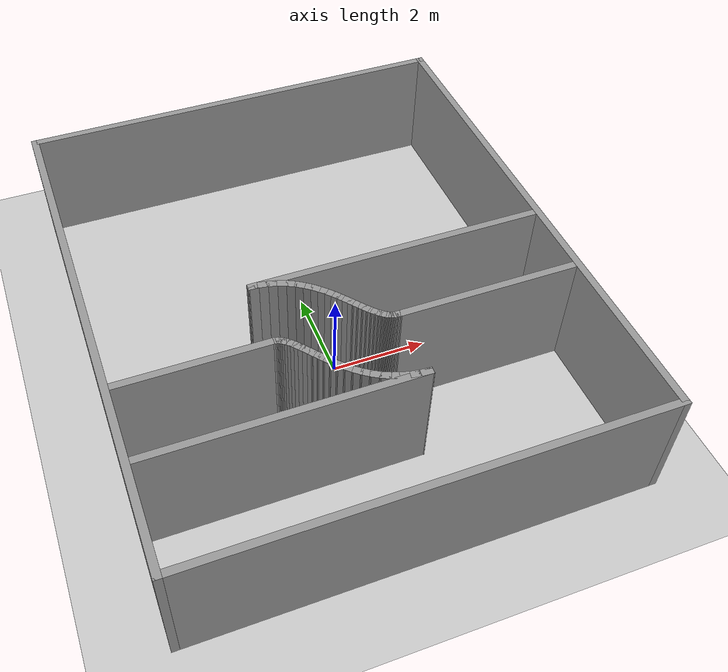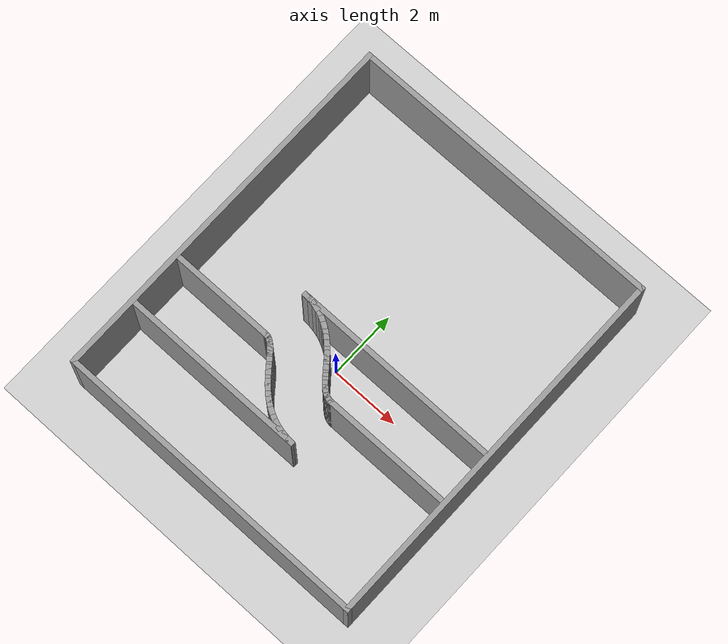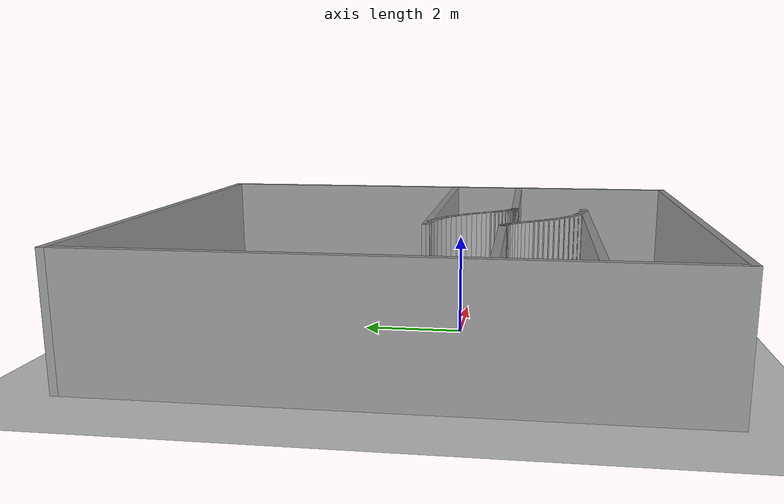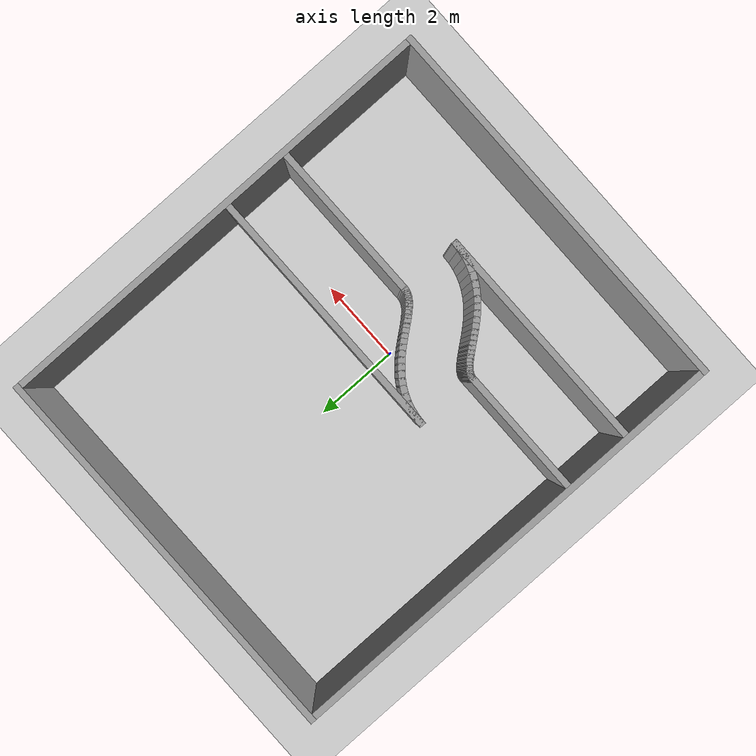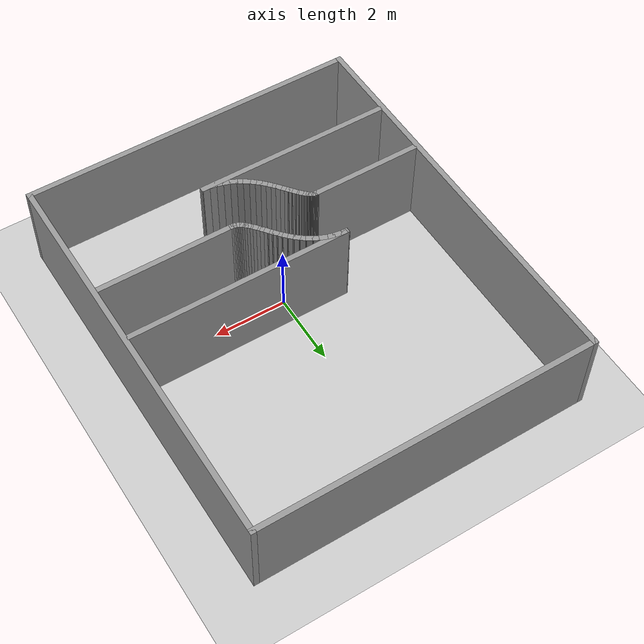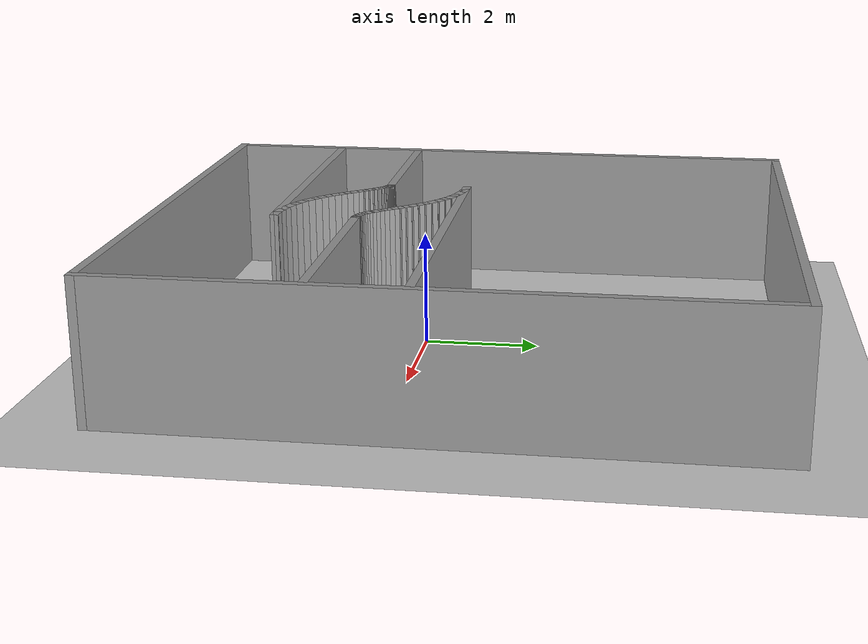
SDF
<sdf version="1.7">
 <world name="default">
  <model name="ground_plane">
   <static>1</static>
   <link name="link">
    <collision name="collision">
     <geometry><plane><normal>0 0 1</normal><size>100 100</size></plane></geometry>
     <surface>
      <contact><collide_bitmask>65535</collide_bitmask></contact>
      <friction><ode><mu>100</mu><mu2>50</mu2></ode></friction>
     </surface>
    </collision>
    <visual name="visual">
     <cast_shadows>0</cast_shadows>
     <geometry><plane><normal>0 0 1</normal><size>100 100</size></plane></geometry>
     <material>
      <script><uri>file://media/materials/scripts/gazebo.material</uri><name>Gazebo/Grey</name></script>
     </material>
    </visual>
   </link>
  </model>
  <model name="map_s_trap_outer">
   <link name="Wall_bottom">
    <collision name="Wall_bottom_Collision">
     <geometry><box><size>9.35 0.15 2.5</size></box></geometry>
     <pose>0 0 1.25 0 -0 0</pose>
    </collision>
    <visual name="Wall_bottom_Visual">
     <pose>0 0 1.25 0 -0 0</pose>
     <geometry><box><size>9.35 0.15 2.5</size></box></geometry>
     <material>
      <script><uri>file://media/materials/scripts/gazebo.material</uri><name>Gazebo/Grey</name></script>
      <ambient>1 1 1 1</ambient>
     </material>
    </visual>
    <pose>0.000000 -4.600000 0 0 -0 0.000000</pose>
   </link>
   <link name="Wall_top">
    <collision name="Wall_top_Collision">
     <geometry><box><size>9.35 0.15 2.5</size></box></geometry>
     <pose>0 0 1.25 0 -0 0</pose>
    </collision>
    <visual name="Wall_top_Visual">
     <pose>0 0 1.25 0 -0 0</pose>
     <geometry><box><size>9.35 0.15 2.5</size></box></geometry>
     <material>
      <script><uri>file://media/materials/scripts/gazebo.material</uri><name>Gazebo/Grey</name></script>
      <ambient>1 1 1 1</ambient>
     </material>
    </visual>
    <pose>0.000000 6.313750 0 0 -0 0.000000</pose>
   </link>
   <link name="Wall_left">
    <collision name="Wall_left_Collision">
     <geometry><box><size>11.0638 0.15 2.5</size></box></geometry>
     <pose>0 0 1.25 0 -0 0</pose>
    </collision>
    <visual name="Wall_left_Visual">
     <pose>0 0 1.25 0 -0 0</pose>
     <geometry><box><size>11.0638 0.15 2.5</size></box></geometry>
     <material>
      <script><uri>file://media/materials/scripts/gazebo.material</uri><name>Gazebo/Grey</name></script>
      <ambient>1 1 1 1</ambient>
     </material>
    </visual>
    <pose>-4.600000 0.856875 0 0 -0 1.570796</pose>
   </link>
   <link name="Wall_right">
    <collision name="Wall_right_Collision">
     <geometry><box><size>11.0638 0.15 2.5</size></box></geometry>
     <pose>0 0 1.25 0 -0 0</pose>
    </collision>
    <visual name="Wall_right_Visual">
     <pose>0 0 1.25 0 -0 0</pose>
     <geometry><box><size>11.0638 0.15 2.5</size></box></geometry>
     <material>
      <script><uri>file://media/materials/scripts/gazebo.material</uri><name>Gazebo/Grey</name></script>
      <ambient>1 1 1 1</ambient>
     </material>
    </visual>
    <pose>4.600000 0.856875 0 0 -0 1.570796</pose>
   </link>
   <static>1</static>
  </model>
  <model name="map_s_trap_s_walls">
   <link name="Left_hook_upper_arm">
    <collision name="Left_hook_upper_arm_Collision">
     <geometry><box><size>3.015 0.15 2.5</size></box></geometry>
     <pose>0 0 1.25 0 -0 0</pose>
    </collision>
    <visual name="Left_hook_upper_arm_Visual">
     <pose>0 0 1.25 0 -0 0</pose>
     <geometry><box><size>3.015 0.15 2.5</size></box></geometry>
     <material>
      <script><uri>file://media/materials/scripts/gazebo.material</uri><name>Gazebo/Grey</name></script>
      <ambient>1 1 1 1</ambient>
     </material>
    </visual>
    <pose>-3.037500 -0.890000 0 0 -0 0.000000</pose>
   </link>
   <link name="S_lower_curve_00">
    <collision name="S_lower_curve_00_Collision">
     <geometry><box><size>0.0787315 0.15 2.5</size></box></geometry>
     <pose>0 0 1.25 0 -0 0</pose>
    </collision>
    <visual name="S_lower_curve_00_Visual">
     <pose>0 0 1.25 0 -0 0</pose>
     <geometry><box><size>0.0787315 0.15 2.5</size></box></geometry>
     <material>
      <script><uri>file://media/materials/scripts/gazebo.material</uri><name>Gazebo/Grey</name></script>
      <ambient>1 1 1 1</ambient>
     </material>
    </visual>
    <pose>-1.530659 -0.890978 0 0 -0 -0.050548</pose>
   </link>
   <link name="S_lower_curve_01">
    <collision name="S_lower_curve_01_Collision">
     <geometry><box><size>0.0707971 0.15 2.5</size></box></geometry>
     <pose>0 0 1.25 0 -0 0</pose>
    </collision>
    <visual name="S_lower_curve_01_Visual">
     <pose>0 0 1.25 0 -0 0</pose>
     <geometry><box><size>0.0707971 0.15 2.5</size></box></geometry>
     <material>
      <script><uri>file://media/materials/scripts/gazebo.material</uri><name>Gazebo/Grey</name></script>
      <ambient>1 1 1 1</ambient>
     </material>
    </visual>
    <pose>-1.496115 -0.894400 0 0 -0 -0.159353</pose>
   </link>
   <link name="S_lower_curve_02">
    <collision name="S_lower_curve_02_Collision">
     <geometry><box><size>0.0671946 0.15 2.5</size></box></geometry>
     <pose>0 0 1.25 0 -0 0</pose>
    </collision>
    <visual name="S_lower_curve_02_Visual">
     <pose>0 0 1.25 0 -0 0</pose>
     <geometry><box><size>0.0671946 0.15 2.5</size></box></geometry>
     <material>
      <script><uri>file://media/materials/scripts/gazebo.material</uri><name>Gazebo/Grey</name></script>
      <ambient>1 1 1 1</ambient>
     </material>
    </visual>
    <pose>-1.467806 -0.900470 0 0 -0 -0.269966</pose>
   </link>
   <link name="S_lower_curve_03">
    <collision name="S_lower_curve_03_Collision">
     <geometry><box><size>0.0678011 0.15 2.5</size></box></geometry>
     <pose>0 0 1.25 0 -0 0</pose>
    </collision>
    <visual name="S_lower_curve_03_Visual">
     <pose>0 0 1.25 0 -0 0</pose>
     <geometry><box><size>0.0678011 0.15 2.5</size></box></geometry>
     <material>
      <script><uri>file://media/materials/scripts/gazebo.material</uri><name>Gazebo/Grey</name></script>
      <ambient>1 1 1 1</ambient>
     </material>
    </visual>
    <pose>-1.441782 -0.909227 0 0 -0 -0.377988</pose>
   </link>
   <link name="S_lower_curve_04">
    <collision name="S_lower_curve_04_Collision">
     <geometry><box><size>0.0720038 0.15 2.5</size></box></geometry>
     <pose>0 0 1.25 0 -0 0</pose>
    </collision>
    <visual name="S_lower_curve_04_Visual">
     <pose>0 0 1.25 0 -0 0</pose>
     <geometry><box><size>0.0720038 0.15 2.5</size></box></geometry>
     <material>
      <script><uri>file://media/materials/scripts/gazebo.material</uri><name>Gazebo/Grey</name></script>
      <ambient>1 1 1 1</ambient>
     </material>
    </visual>
    <pose>-1.414664 -0.921735 0 0 -0 -0.479228</pose>
   </link>
   <link name="S_lower_curve_05">
    <collision name="S_lower_curve_05_Collision">
     <geometry><box><size>0.078875 0.15 2.5</size></box></geometry>
     <pose>0 0 1.25 0 -0 0</pose>
    </collision>
    <visual name="S_lower_curve_05_Visual">
     <pose>0 0 1.25 0 -0 0</pose>
     <geometry><box><size>0.078875 0.15 2.5</size></box></geometry>
     <material>
      <script><uri>file://media/materials/scripts/gazebo.material</uri><name>Gazebo/Grey</name></script>
      <ambient>1 1 1 1</ambient>
     </material>
    </visual>
    <pose>-1.384110 -0.939618 0 0 -0 -0.570931</pose>
   </link>
   <link name="S_lower_curve_06">
    <collision name="S_lower_curve_06_Collision">
     <geometry><box><size>0.0874197 0.15 2.5</size></box></geometry>
     <pose>0 0 1.25 0 -0 0</pose>
    </collision>
    <visual name="S_lower_curve_06_Visual">
     <pose>0 0 1.25 0 -0 0</pose>
     <geometry><box><size>0.0874197 0.15 2.5</size></box></geometry>
     <material>
      <script><uri>file://media/materials/scripts/gazebo.material</uri><name>Gazebo/Grey</name></script>
      <ambient>1 1 1 1</ambient>
     </material>
    </visual>
    <pose>-1.348904 -0.964502 0 0 -0 -0.651651</pose>
   </link>
   <link name="S_lower_curve_07">
    <collision name="S_lower_curve_07_Collision">
     <geometry><box><size>0.0967732 0.15 2.5</size></box></geometry>
     <pose>0 0 1.25 0 -0 0</pose>
    </collision>
    <visual name="S_lower_curve_07_Visual">
     <pose>0 0 1.25 0 -0 0</pose>
     <geometry><box><size>0.0967732 0.15 2.5</size></box></geometry>
     <material>
      <script><uri>file://media/materials/scripts/gazebo.material</uri><name>Gazebo/Grey</name></script>
      <ambient>1 1 1 1</ambient>
     </material>
    </visual>
    <pose>-1.308726 -0.997617 0 0 -0 -0.720787</pose>
   </link>
   <link name="S_lower_curve_08">
    <collision name="S_lower_curve_08_Collision">
     <geometry><box><size>0.106293 0.15 2.5</size></box></geometry>
     <pose>0 0 1.25 0 -0 0</pose>
    </collision>
    <visual name="S_lower_curve_08_Visual">
     <pose>0 0 1.25 0 -0 0</pose>
     <geometry><box><size>0.106293 0.15 2.5</size></box></geometry>
     <material>
      <script><uri>file://media/materials/scripts/gazebo.material</uri><name>Gazebo/Grey</name></script>
      <ambient>1 1 1 1</ambient>
     </material>
    </visual>
    <pose>-1.263796 -1.039622 0 0 -0 -0.778314</pose>
   </link>
   <link name="S_lower_curve_09">
    <collision name="S_lower_curve_09_Collision">
     <geometry><box><size>0.115562 0.15 2.5</size></box></geometry>
     <pose>0 0 1.25 0 -0 0</pose>
    </collision>
    <visual name="S_lower_curve_09_Visual">
     <pose>0 0 1.25 0 -0 0</pose>
     <geometry><box><size>0.115562 0.15 2.5</size></box></geometry>
     <material>
      <script><uri>file://media/materials/scripts/gazebo.material</uri><name>Gazebo/Grey</name></script>
      <ambient>1 1 1 1</ambient>
     </material>
    </visual>
    <pose>-1.214544 -1.090635 0 0 -0 -0.824582</pose>
   </link>
   <link name="S_lower_curve_10">
    <collision name="S_lower_curve_10_Collision">
     <geometry><box><size>0.124351 0.15 2.5</size></box></geometry>
     <pose>0 0 1.25 0 -0 0</pose>
    </collision>
    <visual name="S_lower_curve_10_Visual">
     <pose>0 0 1.25 0 -0 0</pose>
     <geometry><box><size>0.124351 0.15 2.5</size></box></geometry>
     <material>
      <script><uri>file://media/materials/scripts/gazebo.material</uri><name>Gazebo/Grey</name></script>
      <ambient>1 1 1 1</ambient>
     </material>
    </visual>
    <pose>-1.161383 -1.150342 0 0 -0 -0.860117</pose>
   </link>
   <link name="S_lower_curve_11">
    <collision name="S_lower_curve_11_Collision">
     <geometry><box><size>0.132566 0.15 2.5</size></box></geometry>
     <pose>0 0 1.25 0 -0 0</pose>
    </collision>
    <visual name="S_lower_curve_11_Visual">
     <pose>0 0 1.25 0 -0 0</pose>
     <geometry><box><size>0.132566 0.15 2.5</size></box></geometry>
     <material>
      <script><uri>file://media/materials/scripts/gazebo.material</uri><name>Gazebo/Grey</name></script>
      <ambient>1 1 1 1</ambient>
     </material>
    </visual>
    <pose>-1.104576 -1.218141 0 0 -0 -0.885475</pose>
   </link>
   <link name="S_lower_curve_12">
    <collision name="S_lower_curve_12_Collision">
     <geometry><box><size>0.140205 0.15 2.5</size></box></geometry>
     <pose>0 0 1.25 0 -0 0</pose>
    </collision>
    <visual name="S_lower_curve_12_Visual">
     <pose>0 0 1.25 0 -0 0</pose>
     <geometry><box><size>0.140205 0.15 2.5</size></box></geometry>
     <material>
      <script><uri>file://media/materials/scripts/gazebo.material</uri><name>Gazebo/Grey</name></script>
      <ambient>1 1 1 1</ambient>
     </material>
    </visual>
    <pose>-1.044183 -1.293257 0 0 -0 -0.901142</pose>
   </link>
   <link name="S_lower_curve_13">
    <collision name="S_lower_curve_13_Collision">
     <geometry><box><size>0.147327 0.15 2.5</size></box></geometry>
     <pose>0 0 1.25 0 -0 0</pose>
    </collision>
    <visual name="S_lower_curve_13_Visual">
     <pose>0 0 1.25 0 -0 0</pose>
     <geometry><box><size>0.147327 0.15 2.5</size></box></geometry>
     <material>
      <script><uri>file://media/materials/scripts/gazebo.material</uri><name>Gazebo/Grey</name></script>
      <ambient>1 1 1 1</ambient>
     </material>
    </visual>
    <pose>-0.980040 -1.374823 0 0 -0 -0.907470</pose>
   </link>
   <link name="S_lower_curve_14">
    <collision name="S_lower_curve_14_Collision">
     <geometry><box><size>0.154032 0.15 2.5</size></box></geometry>
     <pose>0 0 1.25 0 -0 0</pose>
    </collision>
    <visual name="S_lower_curve_14_Visual">
     <pose>0 0 1.25 0 -0 0</pose>
     <geometry><box><size>0.154032 0.15 2.5</size></box></geometry>
     <material>
      <script><uri>file://media/materials/scripts/gazebo.material</uri><name>Gazebo/Grey</name></script>
      <ambient>1 1 1 1</ambient>
     </material>
    </visual>
    <pose>-0.911764 -1.461934 0 0 -0 -0.904656</pose>
   </link>
   <link name="S_lower_curve_15">
    <collision name="S_lower_curve_15_Collision">
     <geometry><box><size>0.160445 0.15 2.5</size></box></geometry>
     <pose>0 0 1.25 0 -0 0</pose>
    </collision>
    <visual name="S_lower_curve_15_Visual">
     <pose>0 0 1.25 0 -0 0</pose>
     <geometry><box><size>0.160445 0.15 2.5</size></box></geometry>
     <material>
      <script><uri>file://media/materials/scripts/gazebo.material</uri><name>Gazebo/Grey</name></script>
      <ambient>1 1 1 1</ambient>
     </material>
    </visual>
    <pose>-0.838754 -1.553661 0 0 -0 -0.892729</pose>
   </link>
   <link name="S_lower_curve_16">
    <collision name="S_lower_curve_16_Collision">
     <geometry><box><size>0.166706 0.15 2.5</size></box></geometry>
     <pose>0 0 1.25 0 -0 0</pose>
    </collision>
    <visual name="S_lower_curve_16_Visual">
     <pose>0 0 1.25 0 -0 0</pose>
     <geometry><box><size>0.166706 0.15 2.5</size></box></geometry>
     <material>
      <script><uri>file://media/materials/scripts/gazebo.material</uri><name>Gazebo/Grey</name></script>
      <ambient>1 1 1 1</ambient>
     </material>
    </visual>
    <pose>-0.760201 -1.649048 0 0 -0 -0.871561</pose>
   </link>
   <link name="S_lower_curve_17">
    <collision name="S_lower_curve_17_Collision">
     <geometry><box><size>0.172959 0.15 2.5</size></box></geometry>
     <pose>0 0 1.25 0 -0 0</pose>
    </collision>
    <visual name="S_lower_curve_17_Visual">
     <pose>0 0 1.25 0 -0 0</pose>
     <geometry><box><size>0.172959 0.15 2.5</size></box></geometry>
     <material>
      <script><uri>file://media/materials/scripts/gazebo.material</uri><name>Gazebo/Grey</name></script>
      <ambient>1 1 1 1</ambient>
     </material>
    </visual>
    <pose>-0.675096 -1.747077 0 0 -0 -0.840895</pose>
   </link>
   <link name="S_lower_curve_18">
    <collision name="S_lower_curve_18_Collision">
     <geometry><box><size>0.17933 0.15 2.5</size></box></geometry>
     <pose>0 0 1.25 0 -0 0</pose>
    </collision>
    <visual name="S_lower_curve_18_Visual">
     <pose>0 0 1.25 0 -0 0</pose>
     <geometry><box><size>0.17933 0.15 2.5</size></box></geometry>
     <material>
      <script><uri>file://media/materials/scripts/gazebo.material</uri><name>Gazebo/Grey</name></script>
      <ambient>1 1 1 1</ambient>
     </material>
    </visual>
    <pose>-0.582252 -1.846614 0 0 -0 -0.800394</pose>
   </link>
   <link name="S_lower_curve_19">
    <collision name="S_lower_curve_19_Collision">
     <geometry><box><size>0.185913 0.15 2.5</size></box></geometry>
     <pose>0 0 1.25 0 -0 0</pose>
    </collision>
    <visual name="S_lower_curve_19_Visual">
     <pose>0 0 1.25 0 -0 0</pose>
     <geometry><box><size>0.185913 0.15 2.5</size></box></geometry>
     <material>
      <script><uri>file://media/materials/scripts/gazebo.material</uri><name>Gazebo/Grey</name></script>
      <ambient>1 1 1 1</ambient>
     </material>
    </visual>
    <pose>-0.480340 -1.946323 0 0 -0 -0.749720</pose>
   </link>
   <link name="S_lower_curve_20">
    <collision name="S_lower_curve_20_Collision">
     <geometry><box><size>0.19273 0.15 2.5</size></box></geometry>
     <pose>0 0 1.25 0 -0 0</pose>
    </collision>
    <visual name="S_lower_curve_20_Visual">
     <pose>0 0 1.25 0 -0 0</pose>
     <geometry><box><size>0.19273 0.15 2.5</size></box></geometry>
     <material>
      <script><uri>file://media/materials/scripts/gazebo.material</uri><name>Gazebo/Grey</name></script>
      <ambient>1 1 1 1</ambient>
     </material>
    </visual>
    <pose>-0.367983 -2.044568 0 0 -0 -0.688655</pose>
   </link>
   <link name="S_lower_curve_21">
    <collision name="S_lower_curve_21_Collision">
     <geometry><box><size>0.199713 0.15 2.5</size></box></geometry>
     <pose>0 0 1.25 0 -0 0</pose>
    </collision>
    <visual name="S_lower_curve_21_Visual">
     <pose>0 0 1.25 0 -0 0</pose>
     <geometry><box><size>0.199713 0.15 2.5</size></box></geometry>
     <material>
      <script><uri>file://media/materials/scripts/gazebo.material</uri><name>Gazebo/Grey</name></script>
      <ambient>1 1 1 1</ambient>
     </material>
    </visual>
    <pose>-0.243901 -2.139319 0 0 -0 -0.617265</pose>
   </link>
   <link name="S_lower_curve_22">
    <collision name="S_lower_curve_22_Collision">
     <geometry><box><size>0.206682 0.15 2.5</size></box></geometry>
     <pose>0 0 1.25 0 -0 0</pose>
    </collision>
    <visual name="S_lower_curve_22_Visual">
     <pose>0 0 1.25 0 -0 0</pose>
     <geometry><box><size>0.206682 0.15 2.5</size></box></geometry>
     <material>
      <script><uri>file://media/materials/scripts/gazebo.material</uri><name>Gazebo/Grey</name></script>
      <ambient>1 1 1 1</ambient>
     </material>
    </visual>
    <pose>-0.107132 -2.228110 0 0 -0 -0.536091</pose>
   </link>
   <link name="S_lower_curve_23">
    <collision name="S_lower_curve_23_Collision">
     <geometry><box><size>0.213371 0.15 2.5</size></box></geometry>
     <pose>0 0 1.25 0 -0 0</pose>
    </collision>
    <visual name="S_lower_curve_23_Visual">
     <pose>0 0 1.25 0 -0 0</pose>
     <geometry><box><size>0.213371 0.15 2.5</size></box></geometry>
     <material>
      <script><uri>file://media/materials/scripts/gazebo.material</uri><name>Gazebo/Grey</name></script>
      <ambient>1 1 1 1</ambient>
     </material>
    </visual>
    <pose>0.042711 -2.308097 0 0 -0 -0.446326</pose>
   </link>
   <link name="S_lower_curve_24">
    <collision name="S_lower_curve_24_Collision">
     <geometry><box><size>0.219503 0.15 2.5</size></box></geometry>
     <pose>0 0 1.25 0 -0 0</pose>
    </collision>
    <visual name="S_lower_curve_24_Visual">
     <pose>0 0 1.25 0 -0 0</pose>
     <geometry><box><size>0.219503 0.15 2.5</size></box></geometry>
     <material>
      <script><uri>file://media/materials/scripts/gazebo.material</uri><name>Gazebo/Grey</name></script>
      <ambient>1 1 1 1</ambient>
     </material>
    </visual>
    <pose>0.205217 -2.376282 0 0 -0 -0.349904</pose>
   </link>
   <link name="S_lower_curve_25">
    <collision name="S_lower_curve_25_Collision">
     <geometry><box><size>0.224906 0.15 2.5</size></box></geometry>
     <pose>0 0 1.25 0 -0 0</pose>
    </collision>
    <visual name="S_lower_curve_25_Visual">
     <pose>0 0 1.25 0 -0 0</pose>
     <geometry><box><size>0.224906 0.15 2.5</size></box></geometry>
     <material>
      <script><uri>file://media/materials/scripts/gazebo.material</uri><name>Gazebo/Grey</name></script>
      <ambient>1 1 1 1</ambient>
     </material>
    </visual>
    <pose>0.379122 -2.429872 0 0 -0 -0.249427</pose>
   </link>
   <link name="S_lower_curve_26">
    <collision name="S_lower_curve_26_Collision">
     <geometry><box><size>0.229624 0.15 2.5</size></box></geometry>
     <pose>0 0 1.25 0 -0 0</pose>
    </collision>
    <visual name="S_lower_curve_26_Visual">
     <pose>0 0 1.25 0 -0 0</pose>
     <geometry><box><size>0.229624 0.15 2.5</size></box></geometry>
     <material>
      <script><uri>file://media/materials/scripts/gazebo.material</uri><name>Gazebo/Grey</name></script>
      <ambient>1 1 1 1</ambient>
     </material>
    </visual>
    <pose>0.562491 -2.466665 0 0 -0 -0.147894</pose>
   </link>
   <link name="S_lower_curve_27">
    <collision name="S_lower_curve_27_Collision">
     <geometry><box><size>0.233958 0.15 2.5</size></box></geometry>
     <pose>0 0 1.25 0 -0 0</pose>
    </collision>
    <visual name="S_lower_curve_27_Visual">
     <pose>0 0 1.25 0 -0 0</pose>
     <geometry><box><size>0.233958 0.15 2.5</size></box></geometry>
     <material>
      <script><uri>file://media/materials/scripts/gazebo.material</uri><name>Gazebo/Grey</name></script>
      <ambient>1 1 1 1</ambient>
     </material>
    </visual>
    <pose>0.753134 -2.485318 0 0 -0 -0.048299</pose>
   </link>
   <link name="Left_hook_lower_arm">
    <collision name="Left_hook_lower_arm_Collision">
     <geometry><box><size>5.415 0.15 2.5</size></box></geometry>
     <pose>0 0 1.25 0 -0 0</pose>
    </collision>
    <visual name="Left_hook_lower_arm_Visual">
     <pose>0 0 1.25 0 -0 0</pose>
     <geometry><box><size>5.415 0.15 2.5</size></box></geometry>
     <material>
      <script><uri>file://media/materials/scripts/gazebo.material</uri><name>Gazebo/Grey</name></script>
      <ambient>1 1 1 1</ambient>
     </material>
    </visual>
    <pose>-1.837500 -2.490000 0 0 -0 0.000000</pose>
   </link>
   <link name="Right_hook_upper_arm">
    <collision name="Right_hook_upper_arm_Collision">
     <geometry><box><size>6.115 0.15 2.5</size></box></geometry>
     <pose>0 0 1.25 0 -0 0</pose>
    </collision>
    <visual name="Right_hook_upper_arm_Visual">
     <pose>0 0 1.25 0 -0 0</pose>
     <geometry><box><size>6.115 0.15 2.5</size></box></geometry>
     <material>
      <script><uri>file://media/materials/scripts/gazebo.material</uri><name>Gazebo/Grey</name></script>
      <ambient>1 1 1 1</ambient>
     </material>
    </visual>
    <pose>1.487500 0.530000 0 0 -0 0.000000</pose>
   </link>
   <link name="S_upper_curve_00">
    <collision name="S_upper_curve_00_Collision">
     <geometry><box><size>0.229834 0.15 2.5</size></box></geometry>
     <pose>0 0 1.25 0 -0 0</pose>
    </collision>
    <visual name="S_upper_curve_00_Visual">
     <pose>0 0 1.25 0 -0 0</pose>
     <geometry><box><size>0.229834 0.15 2.5</size></box></geometry>
     <material>
      <script><uri>file://media/materials/scripts/gazebo.material</uri><name>Gazebo/Grey</name></script>
      <ambient>1 1 1 1</ambient>
     </material>
    </visual>
    <pose>-1.455215 0.525002 0 0 -0 -0.052683</pose>
   </link>
   <link name="S_upper_curve_01">
    <collision name="S_upper_curve_01_Collision">
     <geometry><box><size>0.22609 0.15 2.5</size></box></geometry>
     <pose>0 0 1.25 0 -0 0</pose>
    </collision>
    <visual name="S_upper_curve_01_Visual">
     <pose>0 0 1.25 0 -0 0</pose>
     <geometry><box><size>0.22609 0.15 2.5</size></box></geometry>
     <material>
      <script><uri>file://media/materials/scripts/gazebo.material</uri><name>Gazebo/Grey</name></script>
      <ambient>1 1 1 1</ambient>
     </material>
    </visual>
    <pose>-1.268586 0.505100 0 0 -0 -0.160868</pose>
   </link>
   <link name="S_upper_curve_02">
    <collision name="S_upper_curve_02_Collision">
     <geometry><box><size>0.221457 0.15 2.5</size></box></geometry>
     <pose>0 0 1.25 0 -0 0</pose>
    </collision>
    <visual name="S_upper_curve_02_Visual">
     <pose>0 0 1.25 0 -0 0</pose>
     <geometry><box><size>0.221457 0.15 2.5</size></box></geometry>
     <material>
      <script><uri>file://media/materials/scripts/gazebo.material</uri><name>Gazebo/Grey</name></script>
      <ambient>1 1 1 1</ambient>
     </material>
    </visual>
    <pose>-1.089305 0.465980 0 0 -0 -0.270183</pose>
   </link>
   <link name="S_upper_curve_03">
    <collision name="S_upper_curve_03_Collision">
     <geometry><box><size>0.215716 0.15 2.5</size></box></geometry>
     <pose>0 0 1.25 0 -0 0</pose>
    </collision>
    <visual name="S_upper_curve_03_Visual">
     <pose>0 0 1.25 0 -0 0</pose>
     <geometry><box><size>0.215716 0.15 2.5</size></box></geometry>
     <material>
      <script><uri>file://media/materials/scripts/gazebo.material</uri><name>Gazebo/Grey</name></script>
      <ambient>1 1 1 1</ambient>
     </material>
    </visual>
    <pose>-0.920176 0.409431 0 0 -0 -0.376880</pose>
   </link>
   <link name="S_upper_curve_04">
    <collision name="S_upper_curve_04_Collision">
     <geometry><box><size>0.20901 0.15 2.5</size></box></geometry>
     <pose>0 0 1.25 0 -0 0</pose>
    </collision>
    <visual name="S_upper_curve_04_Visual">
     <pose>0 0 1.25 0 -0 0</pose>
     <geometry><box><size>0.20901 0.15 2.5</size></box></geometry>
     <material>
      <script><uri>file://media/materials/scripts/gazebo.material</uri><name>Gazebo/Grey</name></script>
      <ambient>1 1 1 1</ambient>
     </material>
    </visual>
    <pose>-0.763430 0.338266 0 0 -0 -0.477453</pose>
   </link>
   <link name="S_upper_curve_05">
    <collision name="S_upper_curve_05_Collision">
     <geometry><box><size>0.201725 0.15 2.5</size></box></geometry>
     <pose>0 0 1.25 0 -0 0</pose>
    </collision>
    <visual name="S_upper_curve_05_Visual">
     <pose>0 0 1.25 0 -0 0</pose>
     <geometry><box><size>0.201725 0.15 2.5</size></box></geometry>
     <material>
      <script><uri>file://media/materials/scripts/gazebo.material</uri><name>Gazebo/Grey</name></script>
      <ambient>1 1 1 1</ambient>
     </material>
    </visual>
    <pose>-0.620259 0.255857 0 0 -0 -0.569137</pose>
   </link>
   <link name="S_upper_curve_06">
    <collision name="S_upper_curve_06_Collision">
     <geometry><box><size>0.194298 0.15 2.5</size></box></geometry>
     <pose>0 0 1.25 0 -0 0</pose>
    </collision>
    <visual name="S_upper_curve_06_Visual">
     <pose>0 0 1.25 0 -0 0</pose>
     <geometry><box><size>0.194298 0.15 2.5</size></box></geometry>
     <material>
      <script><uri>file://media/materials/scripts/gazebo.material</uri><name>Gazebo/Grey</name></script>
      <ambient>1 1 1 1</ambient>
     </material>
    </visual>
    <pose>-0.490733 0.165581 0 0 -0 -0.650149</pose>
   </link>
   <link name="S_upper_curve_07">
    <collision name="S_upper_curve_07_Collision">
     <geometry><box><size>0.187066 0.15 2.5</size></box></geometry>
     <pose>0 0 1.25 0 -0 0</pose>
    </collision>
    <visual name="S_upper_curve_07_Visual">
     <pose>0 0 1.25 0 -0 0</pose>
     <geometry><box><size>0.187066 0.15 2.5</size></box></geometry>
     <material>
      <script><uri>file://media/materials/scripts/gazebo.material</uri><name>Gazebo/Grey</name></script>
      <ambient>1 1 1 1</ambient>
     </material>
    </visual>
    <pose>-0.374023 0.070415 0 0 -0 -0.719642</pose>
   </link>
   <link name="S_upper_curve_08">
    <collision name="S_upper_curve_08_Collision">
     <geometry><box><size>0.180208 0.15 2.5</size></box></geometry>
     <pose>0 0 1.25 0 -0 0</pose>
    </collision>
    <visual name="S_upper_curve_08_Visual">
     <pose>0 0 1.25 0 -0 0</pose>
     <geometry><box><size>0.180208 0.15 2.5</size></box></geometry>
     <material>
      <script><uri>file://media/materials/scripts/gazebo.material</uri><name>Gazebo/Grey</name></script>
      <ambient>1 1 1 1</ambient>
     </material>
    </visual>
    <pose>-0.268762 -0.027229 0 0 -0 -0.777490</pose>
   </link>
   <link name="S_upper_curve_09">
    <collision name="S_upper_curve_09_Collision">
     <geometry><box><size>0.173758 0.15 2.5</size></box></geometry>
     <pose>0 0 1.25 0 -0 0</pose>
    </collision>
    <visual name="S_upper_curve_09_Visual">
     <pose>0 0 1.25 0 -0 0</pose>
     <geometry><box><size>0.173758 0.15 2.5</size></box></geometry>
     <material>
      <script><uri>file://media/materials/scripts/gazebo.material</uri><name>Gazebo/Grey</name></script>
      <ambient>1 1 1 1</ambient>
     </material>
    </visual>
    <pose>-0.173370 -0.125487 0 0 -0 -0.824013</pose>
   </link>
   <link name="S_upper_curve_10">
    <collision name="S_upper_curve_10_Collision">
     <geometry><box><size>0.167641 0.15 2.5</size></box></geometry>
     <pose>0 0 1.25 0 -0 0</pose>
    </collision>
    <visual name="S_upper_curve_10_Visual">
     <pose>0 0 1.25 0 -0 0</pose>
     <geometry><box><size>0.167641 0.15 2.5</size></box></geometry>
     <material>
      <script><uri>file://media/materials/scripts/gazebo.material</uri><name>Gazebo/Grey</name></script>
      <ambient>1 1 1 1</ambient>
     </material>
    </visual>
    <pose>-0.086289 -0.222923 0 0 -0 -0.859741</pose>
   </link>
   <link name="S_upper_curve_11">
    <collision name="S_upper_curve_11_Collision">
     <geometry><box><size>0.161724 0.15 2.5</size></box></geometry>
     <pose>0 0 1.25 0 -0 0</pose>
    </collision>
    <visual name="S_upper_curve_11_Visual">
     <pose>0 0 1.25 0 -0 0</pose>
     <geometry><box><size>0.161724 0.15 2.5</size></box></geometry>
     <material>
      <script><uri>file://media/materials/scripts/gazebo.material</uri><name>Gazebo/Grey</name></script>
      <ambient>1 1 1 1</ambient>
     </material>
    </visual>
    <pose>-0.006107 -0.318390 0 0 -0 -0.885246</pose>
   </link>
   <link name="S_upper_curve_12">
    <collision name="S_upper_curve_12_Collision">
     <geometry><box><size>0.155851 0.15 2.5</size></box></geometry>
     <pose>0 0 1.25 0 -0 0</pose>
    </collision>
    <visual name="S_upper_curve_12_Visual">
     <pose>0 0 1.25 0 -0 0</pose>
     <geometry><box><size>0.155851 0.15 2.5</size></box></geometry>
     <material>
      <script><uri>file://media/materials/scripts/gazebo.material</uri><name>Gazebo/Grey</name></script>
      <ambient>1 1 1 1</ambient>
     </material>
    </visual>
    <pose>0.068385 -0.410913 0 0 -0 -0.901027</pose>
   </link>
   <link name="S_upper_curve_13">
    <collision name="S_upper_curve_13_Collision">
     <geometry><box><size>0.149867 0.15 2.5</size></box></geometry>
     <pose>0 0 1.25 0 -0 0</pose>
    </collision>
    <visual name="S_upper_curve_13_Visual">
     <pose>0 0 1.25 0 -0 0</pose>
     <geometry><box><size>0.149867 0.15 2.5</size></box></geometry>
     <material>
      <script><uri>file://media/materials/scripts/gazebo.material</uri><name>Gazebo/Grey</name></script>
      <ambient>1 1 1 1</ambient>
     </material>
    </visual>
    <pose>0.138172 -0.499608 0 0 -0 -0.907452</pose>
   </link>
   <link name="S_upper_curve_14">
    <collision name="S_upper_curve_14_Collision">
     <geometry><box><size>0.143635 0.15 2.5</size></box></geometry>
     <pose>0 0 1.25 0 -0 0</pose>
    </collision>
    <visual name="S_upper_curve_14_Visual">
     <pose>0 0 1.25 0 -0 0</pose>
     <geometry><box><size>0.143635 0.15 2.5</size></box></geometry>
     <material>
      <script><uri>file://media/materials/scripts/gazebo.material</uri><name>Gazebo/Grey</name></script>
      <ambient>1 1 1 1</ambient>
     </material>
    </visual>
    <pose>0.204015 -0.583635 0 0 -0 -0.904729</pose>
   </link>
   <link name="S_upper_curve_15">
    <collision name="S_upper_curve_15_Collision">
     <geometry><box><size>0.137044 0.15 2.5</size></box></geometry>
     <pose>0 0 1.25 0 -0 0</pose>
    </collision>
    <visual name="S_upper_curve_15_Visual">
     <pose>0 0 1.25 0 -0 0</pose>
     <geometry><box><size>0.137044 0.15 2.5</size></box></geometry>
     <material>
      <script><uri>file://media/materials/scripts/gazebo.material</uri><name>Gazebo/Grey</name></script>
      <ambient>1 1 1 1</ambient>
     </material>
    </visual>
    <pose>0.266464 -0.662170 0 0 -0 -0.892897</pose>
   </link>
   <link name="S_upper_curve_16">
    <collision name="S_upper_curve_16_Collision">
     <geometry><box><size>0.130027 0.15 2.5</size></box></geometry>
     <pose>0 0 1.25 0 -0 0</pose>
    </collision>
    <visual name="S_upper_curve_16_Visual">
     <pose>0 0 1.25 0 -0 0</pose>
     <geometry><box><size>0.130027 0.15 2.5</size></box></geometry>
     <material>
      <script><uri>file://media/materials/scripts/gazebo.material</uri><name>Gazebo/Grey</name></script>
      <ambient>1 1 1 1</ambient>
     </material>
    </visual>
    <pose>0.325858 -0.734422 0 0 -0 -0.871840</pose>
   </link>
   <link name="S_upper_curve_17">
    <collision name="S_upper_curve_17_Collision">
     <geometry><box><size>0.122567 0.15 2.5</size></box></geometry>
     <pose>0 0 1.25 0 -0 0</pose>
    </collision>
    <visual name="S_upper_curve_17_Visual">
     <pose>0 0 1.25 0 -0 0</pose>
     <geometry><box><size>0.122567 0.15 2.5</size></box></geometry>
     <material>
      <script><uri>file://media/materials/scripts/gazebo.material</uri><name>Gazebo/Grey</name></script>
      <ambient>1 1 1 1</ambient>
     </material>
    </visual>
    <pose>0.382335 -0.799658 0 0 -0 -0.841310</pose>
   </link>
   <link name="S_upper_curve_18">
    <collision name="S_upper_curve_18_Collision">
     <geometry><box><size>0.114727 0.15 2.5</size></box></geometry>
     <pose>0 0 1.25 0 -0 0</pose>
    </collision>
    <visual name="S_upper_curve_18_Visual">
     <pose>0 0 1.25 0 -0 0</pose>
     <geometry><box><size>0.114727 0.15 2.5</size></box></geometry>
     <material>
      <script><uri>file://media/materials/scripts/gazebo.material</uri><name>Gazebo/Grey</name></script>
      <ambient>1 1 1 1</ambient>
     </material>
    </visual>
    <pose>0.435855 -0.857263 0 0 -0 -0.800976</pose>
   </link>
   <link name="S_upper_curve_19">
    <collision name="S_upper_curve_19_Collision">
     <geometry><box><size>0.106669 0.15 2.5</size></box></geometry>
     <pose>0 0 1.25 0 -0 0</pose>
    </collision>
    <visual name="S_upper_curve_19_Visual">
     <pose>0 0 1.25 0 -0 0</pose>
     <geometry><box><size>0.106669 0.15 2.5</size></box></geometry>
     <material>
      <script><uri>file://media/materials/scripts/gazebo.material</uri><name>Gazebo/Grey</name></script>
      <ambient>1 1 1 1</ambient>
     </material>
    </visual>
    <pose>0.486239 -0.906826 0 0 -0 -0.750498</pose>
   </link>
   <link name="S_upper_curve_20">
    <collision name="S_upper_curve_20_Collision">
     <geometry><box><size>0.0986905 0.15 2.5</size></box></geometry>
     <pose>0 0 1.25 0 -0 0</pose>
    </collision>
    <visual name="S_upper_curve_20_Visual">
     <pose>0 0 1.25 0 -0 0</pose>
     <geometry><box><size>0.0986905 0.15 2.5</size></box></geometry>
     <material>
      <script><uri>file://media/materials/scripts/gazebo.material</uri><name>Gazebo/Grey</name></script>
      <ambient>1 1 1 1</ambient>
     </material>
    </visual>
    <pose>0.533257 -0.948231 0 0 -0 -0.689640</pose>
   </link>
   <link name="S_upper_curve_21">
    <collision name="S_upper_curve_21_Collision">
     <geometry><box><size>0.0912546 0.15 2.5</size></box></geometry>
     <pose>0 0 1.25 0 -0 0</pose>
    </collision>
    <visual name="S_upper_curve_21_Visual">
     <pose>0 0 1.25 0 -0 0</pose>
     <geometry><box><size>0.0912546 0.15 2.5</size></box></geometry>
     <material>
      <script><uri>file://media/materials/scripts/gazebo.material</uri><name>Gazebo/Grey</name></script>
      <ambient>1 1 1 1</ambient>
     </material>
    </visual>
    <pose>0.576778 -0.981759 0 0 -0 -0.618412</pose>
   </link>
   <link name="S_upper_curve_22">
    <collision name="S_upper_curve_22_Collision">
     <geometry><box><size>0.0849917 0.15 2.5</size></box></geometry>
     <pose>0 0 1.25 0 -0 0</pose>
    </collision>
    <visual name="S_upper_curve_22_Visual">
     <pose>0 0 1.25 0 -0 0</pose>
     <geometry><box><size>0.0849917 0.15 2.5</size></box></geometry>
     <material>
      <script><uri>file://media/materials/scripts/gazebo.material</uri><name>Gazebo/Grey</name></script>
      <ambient>1 1 1 1</ambient>
     </material>
    </visual>
    <pose>0.616986 -1.008129 0 0 -0 -0.537250</pose>
   </link>
   <link name="S_upper_curve_23">
    <collision name="S_upper_curve_23_Collision">
     <geometry><box><size>0.0806598 0.15 2.5</size></box></geometry>
     <pose>0 0 1.25 0 -0 0</pose>
    </collision>
    <visual name="S_upper_curve_23_Visual">
     <pose>0 0 1.25 0 -0 0</pose>
     <geometry><box><size>0.0806598 0.15 2.5</size></box></geometry>
     <material>
      <script><uri>file://media/materials/scripts/gazebo.material</uri><name>Gazebo/Grey</name></script>
      <ambient>1 1 1 1</ambient>
     </material>
    </visual>
    <pose>0.654643 -1.028434 0 0 -0 -0.447213</pose>
   </link>
   <link name="S_upper_curve_24">
    <collision name="S_upper_curve_24_Collision">
     <geometry><box><size>0.0790364 0.15 2.5</size></box></geometry>
     <pose>0 0 1.25 0 -0 0</pose>
    </collision>
    <visual name="S_upper_curve_24_Visual">
     <pose>0 0 1.25 0 -0 0</pose>
     <geometry><box><size>0.0790364 0.15 2.5</size></box></geometry>
     <material>
      <script><uri>file://media/materials/scripts/gazebo.material</uri><name>Gazebo/Grey</name></script>
      <ambient>1 1 1 1</ambient>
     </material>
    </visual>
    <pose>0.691307 -1.043922 0 0 -0 -0.350179</pose>
   </link>
   <link name="S_upper_curve_25">
    <collision name="S_upper_curve_25_Collision">
     <geometry><box><size>0.0807587 0.15 2.5</size></box></geometry>
     <pose>0 0 1.25 0 -0 0</pose>
    </collision>
    <visual name="S_upper_curve_25_Visual">
     <pose>0 0 1.25 0 -0 0</pose>
     <geometry><box><size>0.0807587 0.15 2.5</size></box></geometry>
     <material>
      <script><uri>file://media/materials/scripts/gazebo.material</uri><name>Gazebo/Grey</name></script>
      <ambient>1 1 1 1</ambient>
     </material>
    </visual>
    <pose>0.729392 -1.055639 0 0 -0 -0.248923</pose>
   </link>
   <link name="S_upper_curve_26">
    <collision name="S_upper_curve_26_Collision">
     <geometry><box><size>0.0861694 0.15 2.5</size></box></geometry>
     <pose>0 0 1.25 0 -0 0</pose>
    </collision>
    <visual name="S_upper_curve_26_Visual">
     <pose>0 0 1.25 0 -0 0</pose>
     <geometry><box><size>0.0861694 0.15 2.5</size></box></geometry>
     <material>
      <script><uri>file://media/materials/scripts/gazebo.material</uri><name>Gazebo/Grey</name></script>
      <ambient>1 1 1 1</ambient>
     </material>
    </visual>
    <pose>0.771980 -1.064035 0 0 -0 -0.146763</pose>
   </link>
   <link name="S_upper_curve_27">
    <collision name="S_upper_curve_27_Collision">
     <geometry><box><size>0.0952445 0.15 2.5</size></box></geometry>
     <pose>0 0 1.25 0 -0 0</pose>
    </collision>
    <visual name="S_upper_curve_27_Visual">
     <pose>0 0 1.25 0 -0 0</pose>
     <geometry><box><size>0.0952445 0.15 2.5</size></box></geometry>
     <material>
      <script><uri>file://media/materials/scripts/gazebo.material</uri><name>Gazebo/Grey</name></script>
      <ambient>1 1 1 1</ambient>
     </material>
    </visual>
    <pose>0.822408 -1.068705 0 0 -0 -0.046883</pose>
   </link>
   <link name="Right_hook_lower_arm">
    <collision name="Right_hook_lower_arm_Collision">
     <geometry><box><size>3.715 0.15 2.5</size></box></geometry>
     <pose>0 0 1.25 0 -0 0</pose>
    </collision>
    <visual name="Right_hook_lower_arm_Visual">
     <pose>0 0 1.25 0 -0 0</pose>
     <geometry><box><size>3.715 0.15 2.5</size></box></geometry>
     <material>
      <script><uri>file://media/materials/scripts/gazebo.material</uri><name>Gazebo/Grey</name></script>
      <ambient>1 1 1 1</ambient>
     </material>
    </visual>
    <pose>2.687500 -1.070000 0 0 -0 0.000000</pose>
   </link>
   <static>1</static>
  </model>
 </world>
</sdf>
